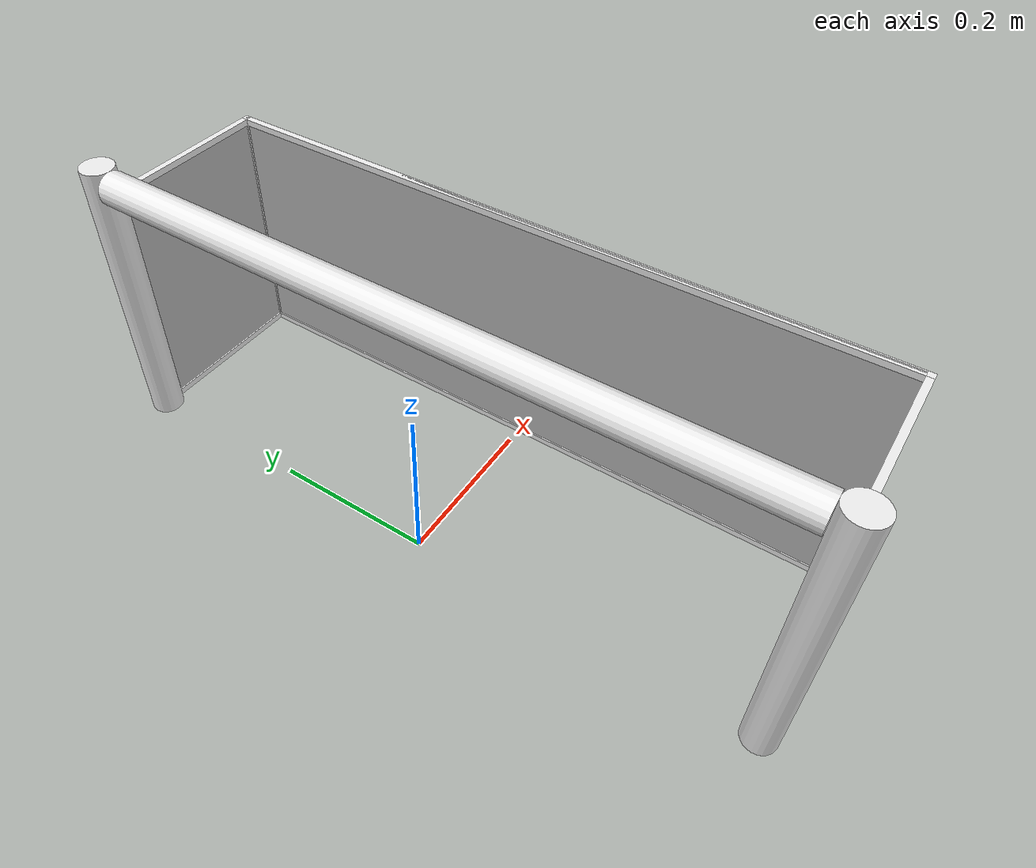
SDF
<?xml version="1.0" ?>
<sdf version="1.5">
  <model name="robocup_3d_goal">
    <static>true</static>
    <link name="left_post">
      <pose>0 0.42 0.18 0 0 0</pose>
      <collision name="collision">
        <geometry>
          <cylinder>
            <radius>0.02</radius>
            <length>0.36</length>
          </cylinder>
        </geometry>
      </collision>
      <visual name="visual">
        <geometry>
          <cylinder>
            <radius>0.02</radius>
            <length>0.36</length>
          </cylinder>
        </geometry>
        <material>
          <script>
            <uri>file://media/materials/scripts/gazebo.material</uri>
            <name>Gazebo/White</name>
          </script>
        </material>
      </visual>
    </link>
    <link name="left_support_horiz_lower">
      <pose>0.12 0.42 0.004 0 0 0</pose>
      <collision name="collision">
        <geometry>
          <box>
            <size>0.20 0.008 0.008</size>
          </box>
        </geometry>
      </collision>
      <visual name="visual">
        <geometry>
          <box>
            <size>0.20 0.008 0.008</size>
          </box>
        </geometry>
        <material>
          <script>
            <uri>file://media/materials/scripts/gazebo.material</uri>
            <name>Gazebo/White</name>
          </script>
        </material>
      </visual>
    </link>
    <link name="left_support_horiz_upper">
      <pose>0.12 0.42 0.316 0 0 0</pose>
      <collision name="collision">
        <geometry>
          <box>
            <size>0.20 0.008 0.008</size>
          </box>
        </geometry>
      </collision>
      <visual name="visual">
        <geometry>
          <box>
            <size>0.20 0.008 0.008</size>
          </box>
        </geometry>
        <material>
          <script>
            <uri>file://media/materials/scripts/gazebo.material</uri>
            <name>Gazebo/White</name>
          </script>
        </material>
      </visual>
    </link>
    <link name="left_support_vertical">
      <pose>0.224 0.42 0.16 0 1.5708 0</pose>
      <collision name="collision">
        <geometry>
          <box>
            <size>0.32 0.008 0.008</size>
          </box>
        </geometry>
      </collision>
      <visual name="visual">
        <geometry>
          <box>
            <size>0.32 0.008 0.008</size>
          </box>
        </geometry>
        <material>
          <script>
            <uri>file://media/materials/scripts/gazebo.material</uri>
            <name>Gazebo/White</name>
          </script>
        </material>
      </visual>
    </link>
    <link name="right_support_horiz_lower">
      <pose>0.12 -0.42 0.004 0 0 0</pose>
      <collision name="collision">
        <geometry>
          <box>
            <size>0.20 0.008 0.008</size>
          </box>
        </geometry>
      </collision>
      <visual name="visual">
        <geometry>
          <box>
            <size>0.20 0.008 0.008</size>
          </box>
        </geometry>
        <material>
          <script>
            <uri>file://media/materials/scripts/gazebo.material</uri>
            <name>Gazebo/White</name>
          </script>
        </material>
      </visual>
    </link>
    <link name="right_support_horiz_upper">
      <pose>0.12 -0.42 0.316 0 0 0</pose>
      <collision name="collision">
        <geometry>
          <box>
            <size>0.20 0.008 0.008</size>
          </box>
        </geometry>
      </collision>
      <visual name="visual">
        <geometry>
          <box>
            <size>0.20 0.008 0.008</size>
          </box>
        </geometry>
        <material>
          <script>
            <uri>file://media/materials/scripts/gazebo.material</uri>
            <name>Gazebo/White</name>
          </script>
        </material>
      </visual>
    </link>
    <link name="right_support_vertical">
      <pose>0.224 -0.42 0.16 0 1.5708 0</pose>
      <collision name="collision">
        <geometry>
          <box>
            <size>0.32 0.008 0.008</size>
          </box>
        </geometry>
      </collision>
      <visual name="visual">
        <geometry>
          <box>
            <size>0.32 0.008 0.008</size>
          </box>
        </geometry>
        <material>
          <script>
            <uri>file://media/materials/scripts/gazebo.material</uri>
            <name>Gazebo/White</name>
          </script>
        </material>
      </visual>
    </link>
    <link name="center_support_horiz_lower">
      <pose>0.224 0 0.004 0 1.5708 0</pose>
      <collision name="collision">
        <geometry>
          <box>
            <size>0.008 0.832 0.008</size>
          </box>
        </geometry>
      </collision>
      <visual name="visual">
        <geometry>
          <box>
            <size>0.008 0.832 0.008</size>
          </box>
        </geometry>
        <material>
          <script>
            <uri>file://media/materials/scripts/gazebo.material</uri>
            <name>Gazebo/White</name>
          </script>
        </material>
      </visual>
    </link>
    <link name="center_support_horiz_upper">
      <pose>0.224 0 0.316 0 1.5708 0</pose>
      <collision name="collision">
        <geometry>
          <box>
            <size>0.008 0.832 0.008</size>
          </box>
        </geometry>
      </collision>
      <visual name="visual">
        <geometry>
          <box>
            <size>0.008 0.832 0.008</size>
          </box>
        </geometry>
        <material>
          <script>
            <uri>file://media/materials/scripts/gazebo.material</uri>
            <name>Gazebo/White</name>
          </script>
        </material>
      </visual>
    </link>
    <link name="right_post">
      <pose>0 -0.42 0.18 0 0 0</pose>
      <collision name="collision">
        <geometry>
          <cylinder>
            <radius>0.02</radius>
            <length>0.36</length>
          </cylinder>
        </geometry>
      </collision>
      <visual name="visual">
        <geometry>
          <cylinder>
            <radius>0.02</radius>
            <length>0.36</length>
          </cylinder>
        </geometry>
        <material>
          <script>
            <uri>file://media/materials/scripts/gazebo.material</uri>
            <name>Gazebo/White</name>
          </script>
        </material>
      </visual>
    </link>
    <link name="crossbar">
      <pose>0 0 0.34 1.57 1.57 0</pose>
      <collision name="collision">
        <geometry>
          <cylinder>
            <radius>0.02</radius>
            <length>0.8</length>
          </cylinder>
        </geometry>
      </collision>
      <visual name="visual">
        <geometry>
          <cylinder>
            <radius>0.02</radius>
            <length>0.8</length>
          </cylinder>
        </geometry>
        <material>
          <script>
            <uri>file://media/materials/scripts/gazebo.material</uri>
            <name>Gazebo/White</name>
          </script>
        </material>
      </visual>
    </link>
    <link name="center_net">
      <pose>0.224 0 0.16 0 0 0</pose>
      <collision name="collision">
        <geometry>
          <box>
            <size>0.004 0.84 0.32</size>
          </box>
        </geometry>
      </collision>
      <visual name="visual">
        <geometry>
          <box>
            <size>0.004 0.84 0.32</size>
          </box>
        </geometry>
        <material>
          <script>
            <uri>model://robocup09_spl_field/materials/scripts/</uri>
            <uri>model://robocup09_spl_field/materials/textures/</uri>
            <name>RoboCup/Net</name>
          </script>
        </material>
      </visual>
    </link>
    <link name="left_net">
      <pose>0.12 0.42 0.16 0 0 0</pose>
      <collision name="collision">
        <geometry>
          <box>
            <size>0.20 0.004 0.304</size>
          </box>
        </geometry>
      </collision>
      <visual name="visual">
        <geometry>
          <box>
            <size>0.20 0.004 0.304</size>
          </box>
        </geometry>
        <material>
          <script>
            <uri>model://robocup09_spl_field/materials/scripts/</uri>
            <uri>model://robocup09_spl_field/materials/textures/</uri>
            <name>RoboCup/Net</name>
          </script>
        </material>
      </visual>
    </link>
    <link name="right_net">
      <pose>0.12 -0.42 0.16 0 0 0</pose>
      <collision name="collision">
        <geometry>
          <box>
            <size>0.20 0.004 0.304</size>
          </box>
        </geometry>
      </collision>
      <visual name="visual">
        <geometry>
          <box>
            <size>0.20 0.004 0.304</size>
          </box>
        </geometry>
        <material>
          <script>
            <uri>model://robocup09_spl_field/materials/scripts/</uri>
            <uri>model://robocup09_spl_field/materials/textures/</uri>
            <name>RoboCup/Net</name>
          </script>
        </material>
      </visual>
    </link>
  </model>
</sdf>
